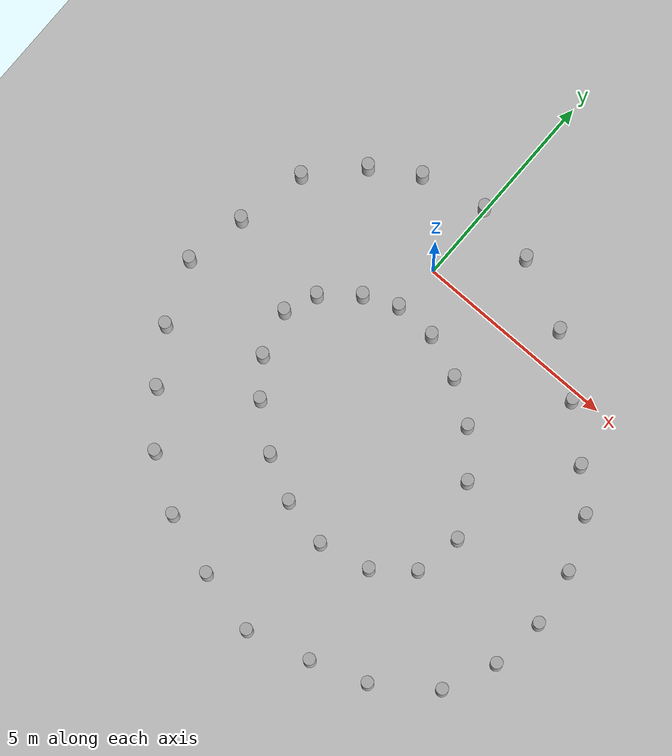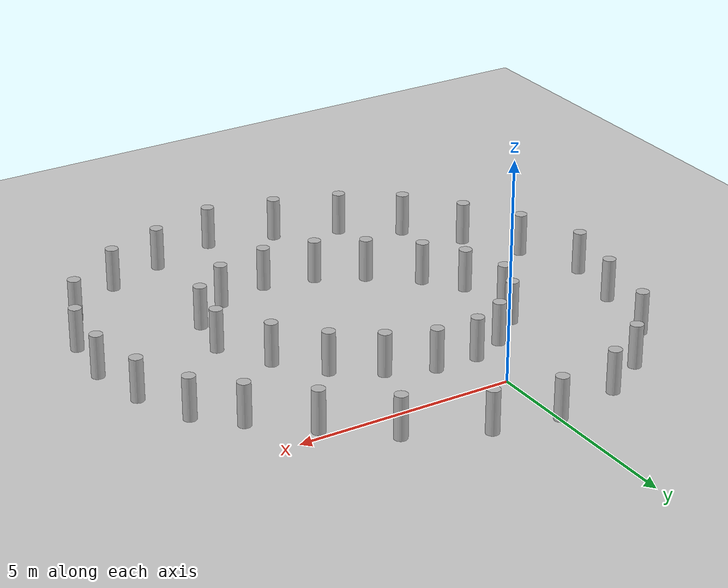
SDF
<sdf version="1.6">
 <world name="default">
  <light name="sun" type="directional">
   <pose>0 0 10 0 -0 0</pose>
   <diffuse>0.8 0.8 0.8 1</diffuse>
   <specular>0.1 0.1 0.1 1</specular>
   <attenuation>
    <range>1000</range>
    <constant>0.9</constant>
    <linear>0.01</linear>
    <quadratic>0.001</quadratic>
   </attenuation>
   <direction>-0.5 0.5 -1</direction>
  </light>
  <model name="ground_plane">
   <static>1</static>
   <link name="link">
    <collision name="collision">
     <geometry><plane><normal>0 0 1</normal><size>100 100</size></plane></geometry>
     <surface><friction><ode><mu>100</mu><mu2>50</mu2></ode></friction></surface>
    </collision>
    <visual name="visual">
     <cast_shadows>0</cast_shadows>
     <geometry><plane><normal>0 0 1</normal><size>100 100</size></plane></geometry>
     <material>
      <script><uri>file://media/materials/scripts/gazebo.material</uri><name>Gazebo/Grey</name></script>
     </material>
    </visual>
   </link>
  </model>
  <gravity>0 0 -9.8</gravity>
  <magnetic_field>6e-06 2.3e-05 -4.2e-05</magnetic_field>
  <atmosphere type="adiabatic"/>
  <physics name="default_physics" default="0" type="ode">
   <max_step_size>0.001</max_step_size>
   <real_time_factor>1</real_time_factor>
   <real_time_update_rate>1000</real_time_update_rate>
  </physics>
  <scene><ambient>0.4 0.4 0.4 1</ambient><background>0.7 0.7 0.7 1</background><shadows>1</shadows></scene>
  <spherical_coordinates>
   <surface_model>EARTH_WGS84</surface_model>
   <latitude_deg>0</latitude_deg>
   <longitude_deg>0</longitude_deg>
   <elevation>0</elevation>
   <heading_deg>0</heading_deg>
  </spherical_coordinates>
  <model name="cone_1">
   <link name="link">
    <inertial>
     <mass>0.1</mass>
     <inertia><ixx>1e-05</ixx><ixy>0</ixy><ixz>0</ixz><iyy>1e-05</iyy><iyz>0</iyz><izz>1e-05</izz></inertia>
    </inertial>
    <collision name="collision">
     <geometry><cylinder><radius>0.15</radius><length>1</length></cylinder></geometry>
     <surface>
      <friction><ode><mu>0.4</mu><mu2>0.4</mu2></ode></friction>
      <contact><ode><max_vel>0.1</max_vel><min_depth>0.0001</min_depth></ode></contact>
     </surface>
    </collision>
    <visual name="visual">
     <geometry><cylinder><radius>0.15</radius><length>1</length></cylinder></geometry>
    </visual>
   </link>
   <pose>-0.039241 -1.1855 0.499948 0.000226 0.000347 -0.028761</pose>
  </model>
  <model name="cone_1_clone">
   <link name="link">
    <inertial>
     <mass>0.1</mass>
     <inertia><ixx>1e-05</ixx><ixy>0</ixy><ixz>0</ixz><iyy>1e-05</iyy><iyz>0</iyz><izz>1e-05</izz></inertia>
    </inertial>
    <collision name="collision">
     <geometry><cylinder><radius>0.15</radius><length>1</length></cylinder></geometry>
     <surface>
      <friction><ode><mu>0.4</mu><mu2>0.4</mu2></ode></friction>
      <contact><ode><max_vel>0.1</max_vel><min_depth>0.0001</min_depth></ode></contact>
     </surface>
    </collision>
    <visual name="visual">
     <geometry><cylinder><radius>0.15</radius><length>1</length></cylinder></geometry>
    </visual>
   </link>
   <pose>0.969411 -1.19941 0.499942 0.000368 0.000253 -0.031693</pose>
  </model>
  <model name="cone_1_clone_0">
   <link name="link">
    <inertial>
     <mass>0.1</mass>
     <inertia><ixx>1e-05</ixx><ixy>0</ixy><ixz>0</ixz><iyy>1e-05</iyy><iyz>0</iyz><izz>1e-05</izz></inertia>
    </inertial>
    <collision name="collision">
     <geometry><cylinder><radius>0.15</radius><length>1</length></cylinder></geometry>
     <surface>
      <friction><ode><mu>0.4</mu><mu2>0.4</mu2></ode></friction>
      <contact><ode><max_vel>0.1</max_vel><min_depth>0.0001</min_depth></ode></contact>
     </surface>
    </collision>
    <visual name="visual">
     <geometry><cylinder><radius>0.15</radius><length>1</length></cylinder></geometry>
    </visual>
   </link>
   <pose>2.00718 -1.60476 0.499946 0.000328 0.000245 -0.022811</pose>
  </model>
  <model name="cone_1_clone_1">
   <link name="link">
    <inertial>
     <mass>0.1</mass>
     <inertia><ixx>1e-05</ixx><ixy>0</ixy><ixz>0</ixz><iyy>1e-05</iyy><iyz>0</iyz><izz>1e-05</izz></inertia>
    </inertial>
    <collision name="collision">
     <geometry><cylinder><radius>0.15</radius><length>1</length></cylinder></geometry>
     <surface>
      <friction><ode><mu>0.4</mu><mu2>0.4</mu2></ode></friction>
      <contact><ode><max_vel>0.1</max_vel><min_depth>0.0001</min_depth></ode></contact>
     </surface>
    </collision>
    <visual name="visual">
     <geometry><cylinder><radius>0.15</radius><length>1</length></cylinder></geometry>
    </visual>
   </link>
   <pose>2.97792 -2.26957 0.499942 0.000237 0.000378 -0.024478</pose>
  </model>
  <model name="cone_1_clone_2">
   <link name="link">
    <inertial>
     <mass>0.1</mass>
     <inertia><ixx>1e-05</ixx><ixy>0</ixy><ixz>0</ixz><iyy>1e-05</iyy><iyz>0</iyz><izz>1e-05</izz></inertia>
    </inertial>
    <collision name="collision">
     <geometry><cylinder><radius>0.15</radius><length>1</length></cylinder></geometry>
     <surface>
      <friction><ode><mu>0.4</mu><mu2>0.4</mu2></ode></friction>
      <contact><ode><max_vel>0.1</max_vel><min_depth>0.0001</min_depth></ode></contact>
     </surface>
    </collision>
    <visual name="visual">
     <geometry><cylinder><radius>0.15</radius><length>1</length></cylinder></geometry>
    </visual>
   </link>
   <pose>-0.03223 1.85501 0.499944 0.000338 0.000296 -0.021319</pose>
  </model>
  <model name="cone_1_clone_3">
   <link name="link">
    <inertial>
     <mass>0.1</mass>
     <inertia><ixx>1e-05</ixx><ixy>0</ixy><ixz>0</ixz><iyy>1e-05</iyy><iyz>0</iyz><izz>1e-05</izz></inertia>
    </inertial>
    <collision name="collision">
     <geometry><cylinder><radius>0.15</radius><length>1</length></cylinder></geometry>
     <surface>
      <friction><ode><mu>0.4</mu><mu2>0.4</mu2></ode></friction>
      <contact><ode><max_vel>0.1</max_vel><min_depth>0.0001</min_depth></ode></contact>
     </surface>
    </collision>
    <visual name="visual">
     <geometry><cylinder><radius>0.15</radius><length>1</length></cylinder></geometry>
    </visual>
   </link>
   <pose>1.46185 1.59059 0.499939 0.00027 0.000354 -0.016409</pose>
  </model>
  <model name="cone_1_clone_4">
   <link name="link">
    <inertial>
     <mass>0.1</mass>
     <inertia><ixx>1e-05</ixx><ixy>0</ixy><ixz>0</ixz><iyy>1e-05</iyy><iyz>0</iyz><izz>1e-05</izz></inertia>
    </inertial>
    <collision name="collision">
     <geometry><cylinder><radius>0.15</radius><length>1</length></cylinder></geometry>
     <surface>
      <friction><ode><mu>0.4</mu><mu2>0.4</mu2></ode></friction>
      <contact><ode><max_vel>0.1</max_vel><min_depth>0.0001</min_depth></ode></contact>
     </surface>
    </collision>
    <visual name="visual">
     <geometry><cylinder><radius>0.15</radius><length>1</length></cylinder></geometry>
    </visual>
   </link>
   <pose>3.14278 0.814292 0.499944 0.000339 0.000293 -0.016082</pose>
  </model>
  <model name="cone_1_clone_6">
   <link name="link">
    <inertial>
     <mass>0.1</mass>
     <inertia><ixx>1e-05</ixx><ixy>0</ixy><ixz>0</ixz><iyy>1e-05</iyy><iyz>0</iyz><izz>1e-05</izz></inertia>
    </inertial>
    <collision name="collision">
     <geometry><cylinder><radius>0.15</radius><length>1</length></cylinder></geometry>
     <surface>
      <friction><ode><mu>0.4</mu><mu2>0.4</mu2></ode></friction>
      <contact><ode><max_vel>0.1</max_vel><min_depth>0.0001</min_depth></ode></contact>
     </surface>
    </collision>
    <visual name="visual">
     <geometry><cylinder><radius>0.15</radius><length>1</length></cylinder></geometry>
    </visual>
   </link>
   <pose>5.54947 -1.25744 0.499948 0.000296 0.000306 -0.019628</pose>
  </model>
  <model name="cone_1_clone_7">
   <link name="link">
    <inertial>
     <mass>0.1</mass>
     <inertia><ixx>1e-05</ixx><ixy>0</ixy><ixz>0</ixz><iyy>1e-05</iyy><iyz>0</iyz><izz>1e-05</izz></inertia>
    </inertial>
    <collision name="collision">
     <geometry><cylinder><radius>0.15</radius><length>1</length></cylinder></geometry>
     <surface>
      <friction><ode><mu>0.4</mu><mu2>0.4</mu2></ode></friction>
      <contact><ode><max_vel>0.1</max_vel><min_depth>0.0001</min_depth></ode></contact>
     </surface>
    </collision>
    <visual name="visual">
     <geometry><cylinder><radius>0.15</radius><length>1</length></cylinder></geometry>
    </visual>
   </link>
   <pose>3.80679 -3.24381 0.499937 0.000257 0.000364 -0.019198</pose>
  </model>
  <model name="cone_1_clone_8">
   <link name="link">
    <inertial>
     <mass>0.1</mass>
     <inertia><ixx>1e-05</ixx><ixy>0</ixy><ixz>0</ixz><iyy>1e-05</iyy><iyz>0</iyz><izz>1e-05</izz></inertia>
    </inertial>
    <collision name="collision">
     <geometry><cylinder><radius>0.15</radius><length>1</length></cylinder></geometry>
     <surface>
      <friction><ode><mu>0.4</mu><mu2>0.4</mu2></ode></friction>
      <contact><ode><max_vel>0.1</max_vel><min_depth>0.0001</min_depth></ode></contact>
     </surface>
    </collision>
    <visual name="visual">
     <geometry><cylinder><radius>0.15</radius><length>1</length></cylinder></geometry>
    </visual>
   </link>
   <pose>6.92668 -3.31432 0.499946 0.000356 0.000178 -0.021743</pose>
  </model>
  <model name="cone_1_clone_9">
   <link name="link">
    <inertial>
     <mass>0.1</mass>
     <inertia><ixx>1e-05</ixx><ixy>0</ixy><ixz>0</ixz><iyy>1e-05</iyy><iyz>0</iyz><izz>1e-05</izz></inertia>
    </inertial>
    <collision name="collision">
     <geometry><cylinder><radius>0.15</radius><length>1</length></cylinder></geometry>
     <surface>
      <friction><ode><mu>0.4</mu><mu2>0.4</mu2></ode></friction>
      <contact><ode><max_vel>0.1</max_vel><min_depth>0.0001</min_depth></ode></contact>
     </surface>
    </collision>
    <visual name="visual">
     <geometry><cylinder><radius>0.15</radius><length>1</length></cylinder></geometry>
    </visual>
   </link>
   <pose>4.50004 -4.40453 0.499939 0.000285 0.000342 -0.022443</pose>
  </model>
  <model name="cone_1_clone_10">
   <link name="link">
    <inertial>
     <mass>0.1</mass>
     <inertia><ixx>1e-05</ixx><ixy>0</ixy><ixz>0</ixz><iyy>1e-05</iyy><iyz>0</iyz><izz>1e-05</izz></inertia>
    </inertial>
    <collision name="collision">
     <geometry><cylinder><radius>0.15</radius><length>1</length></cylinder></geometry>
     <surface>
      <friction><ode><mu>0.4</mu><mu2>0.4</mu2></ode></friction>
      <contact><ode><max_vel>0.1</max_vel><min_depth>0.0001</min_depth></ode></contact>
     </surface>
    </collision>
    <visual name="visual">
     <geometry><cylinder><radius>0.15</radius><length>1</length></cylinder></geometry>
    </visual>
   </link>
   <pose>7.18191 -4.66866 0.499947 0.000362 0.000257 -0.015597</pose>
  </model>
  <model name="cone_1_clone_11">
   <link name="link">
    <inertial>
     <mass>0.1</mass>
     <inertia><ixx>1e-05</ixx><ixy>0</ixy><ixz>0</ixz><iyy>1e-05</iyy><iyz>0</iyz><izz>1e-05</izz></inertia>
    </inertial>
    <collision name="collision">
     <geometry><cylinder><radius>0.15</radius><length>1</length></cylinder></geometry>
     <surface>
      <friction><ode><mu>0.4</mu><mu2>0.4</mu2></ode></friction>
      <contact><ode><max_vel>0.1</max_vel><min_depth>0.0001</min_depth></ode></contact>
     </surface>
    </collision>
    <visual name="visual">
     <geometry><cylinder><radius>0.15</radius><length>1</length></cylinder></geometry>
    </visual>
   </link>
   <pose>4.28345 -5.54835 0.499945 0.000331 0.000307 -0.020982</pose>
  </model>
  <model name="cone_1_clone_12">
   <link name="link">
    <inertial>
     <mass>0.1</mass>
     <inertia><ixx>1e-05</ixx><ixy>0</ixy><ixz>0</ixz><iyy>1e-05</iyy><iyz>0</iyz><izz>1e-05</izz></inertia>
    </inertial>
    <collision name="collision">
     <geometry><cylinder><radius>0.15</radius><length>1</length></cylinder></geometry>
     <surface>
      <friction><ode><mu>0.4</mu><mu2>0.4</mu2></ode></friction>
      <contact><ode><max_vel>0.1</max_vel><min_depth>0.0001</min_depth></ode></contact>
     </surface>
    </collision>
    <visual name="visual">
     <geometry><cylinder><radius>0.15</radius><length>1</length></cylinder></geometry>
    </visual>
   </link>
   <pose>6.47946 -7.26574 0.499947 0.000247 0.000369 -0.017052</pose>
  </model>
  <model name="cone_1_clone_13">
   <link name="link">
    <inertial>
     <mass>0.1</mass>
     <inertia><ixx>1e-05</ixx><ixy>0</ixy><ixz>0</ixz><iyy>1e-05</iyy><iyz>0</iyz><izz>1e-05</izz></inertia>
    </inertial>
    <collision name="collision">
     <geometry><cylinder><radius>0.15</radius><length>1</length></cylinder></geometry>
     <surface>
      <friction><ode><mu>0.4</mu><mu2>0.4</mu2></ode></friction>
      <contact><ode><max_vel>0.1</max_vel><min_depth>0.0001</min_depth></ode></contact>
     </surface>
    </collision>
    <visual name="visual">
     <geometry><cylinder><radius>0.15</radius><length>1</length></cylinder></geometry>
    </visual>
   </link>
   <pose>7.04196 -6.0005 0.499945 0.000202 0.000371 -0.021001</pose>
  </model>
  <model name="cone_1_clone_14">
   <link name="link">
    <inertial>
     <mass>0.1</mass>
     <inertia><ixx>1e-05</ixx><ixy>0</ixy><ixz>0</ixz><iyy>1e-05</iyy><iyz>0</iyz><izz>1e-05</izz></inertia>
    </inertial>
    <collision name="collision">
     <geometry><cylinder><radius>0.15</radius><length>1</length></cylinder></geometry>
     <surface>
      <friction><ode><mu>0.4</mu><mu2>0.4</mu2></ode></friction>
      <contact><ode><max_vel>0.1</max_vel><min_depth>0.0001</min_depth></ode></contact>
     </surface>
    </collision>
    <visual name="visual">
     <geometry><cylinder><radius>0.15</radius><length>1</length></cylinder></geometry>
    </visual>
   </link>
   <pose>3.39785 -6.25296 0.499941 0.000359 0.000267 -0.017434</pose>
  </model>
  <model name="cone_1_clone_15">
   <link name="link">
    <inertial>
     <mass>0.1</mass>
     <inertia><ixx>1e-05</ixx><ixy>0</ixy><ixz>0</ixz><iyy>1e-05</iyy><iyz>0</iyz><izz>1e-05</izz></inertia>
    </inertial>
    <collision name="collision">
     <geometry><cylinder><radius>0.15</radius><length>1</length></cylinder></geometry>
     <surface>
      <friction><ode><mu>0.4</mu><mu2>0.4</mu2></ode></friction>
      <contact><ode><max_vel>0.1</max_vel><min_depth>0.0001</min_depth></ode></contact>
     </surface>
    </collision>
    <visual name="visual">
     <geometry><cylinder><radius>0.15</radius><length>1</length></cylinder></geometry>
    </visual>
   </link>
   <pose>5.08536 -8.26764 0.499943 0.000222 0.000388 -0.025256</pose>
  </model>
  <model name="cone_1_clone_16">
   <link name="link">
    <inertial>
     <mass>0.1</mass>
     <inertia><ixx>1e-05</ixx><ixy>0</ixy><ixz>0</ixz><iyy>1e-05</iyy><iyz>0</iyz><izz>1e-05</izz></inertia>
    </inertial>
    <collision name="collision">
     <geometry><cylinder><radius>0.15</radius><length>1</length></cylinder></geometry>
     <surface>
      <friction><ode><mu>0.4</mu><mu2>0.4</mu2></ode></friction>
      <contact><ode><max_vel>0.1</max_vel><min_depth>0.0001</min_depth></ode></contact>
     </surface>
    </collision>
    <visual name="visual">
     <geometry><cylinder><radius>0.15</radius><length>1</length></cylinder></geometry>
    </visual>
   </link>
   <pose>2.16278 -6.53065 0.499946 0.000264 0.000358 -0.016715</pose>
  </model>
  <model name="cone_1_clone_17">
   <link name="link">
    <inertial>
     <mass>0.1</mass>
     <inertia><ixx>1e-05</ixx><ixy>0</ixy><ixz>0</ixz><iyy>1e-05</iyy><iyz>0</iyz><izz>1e-05</izz></inertia>
    </inertial>
    <collision name="collision">
     <geometry><cylinder><radius>0.15</radius><length>1</length></cylinder></geometry>
     <surface>
      <friction><ode><mu>0.4</mu><mu2>0.4</mu2></ode></friction>
      <contact><ode><max_vel>0.1</max_vel><min_depth>0.0001</min_depth></ode></contact>
     </surface>
    </collision>
    <visual name="visual">
     <geometry><cylinder><radius>0.15</radius><length>1</length></cylinder></geometry>
    </visual>
   </link>
   <pose>3.73303 -8.7319 0.499908 0.000323 0.000313 -0.026379</pose>
  </model>
  <model name="cone_1_clone_18">
   <link name="link">
    <inertial>
     <mass>0.1</mass>
     <inertia><ixx>1e-05</ixx><ixy>0</ixy><ixz>0</ixz><iyy>1e-05</iyy><iyz>0</iyz><izz>1e-05</izz></inertia>
    </inertial>
    <collision name="collision">
     <geometry><cylinder><radius>0.15</radius><length>1</length></cylinder></geometry>
     <surface>
      <friction><ode><mu>0.4</mu><mu2>0.4</mu2></ode></friction>
      <contact><ode><max_vel>0.1</max_vel><min_depth>0.0001</min_depth></ode></contact>
     </surface>
    </collision>
    <visual name="visual">
     <geometry><cylinder><radius>0.15</radius><length>1</length></cylinder></geometry>
    </visual>
   </link>
   <pose>0.981142 -6.26886 0.499947 0.000343 0.000171 -0.012419</pose>
  </model>
  <model name="cone_1_clone_20">
   <link name="link">
    <inertial>
     <mass>0.1</mass>
     <inertia><ixx>1e-05</ixx><ixy>0</ixy><ixz>0</ixz><iyy>1e-05</iyy><iyz>0</iyz><izz>1e-05</izz></inertia>
    </inertial>
    <collision name="collision">
     <geometry><cylinder><radius>0.15</radius><length>1</length></cylinder></geometry>
     <surface>
      <friction><ode><mu>0.4</mu><mu2>0.4</mu2></ode></friction>
      <contact><ode><max_vel>0.1</max_vel><min_depth>0.0001</min_depth></ode></contact>
     </surface>
    </collision>
    <visual name="visual">
     <geometry><cylinder><radius>0.15</radius><length>1</length></cylinder></geometry>
    </visual>
   </link>
   <pose>-0.0586 -5.72267 0.499943 0.00021 0.000378 -0.023314</pose>
  </model>
  <model name="cone_1_clone_21">
   <link name="link">
    <inertial>
     <mass>0.1</mass>
     <inertia><ixx>1e-05</ixx><ixy>0</ixy><ixz>0</ixz><iyy>1e-05</iyy><iyz>0</iyz><izz>1e-05</izz></inertia>
    </inertial>
    <collision name="collision">
     <geometry><cylinder><radius>0.15</radius><length>1</length></cylinder></geometry>
     <surface>
      <friction><ode><mu>0.4</mu><mu2>0.4</mu2></ode></friction>
      <contact><ode><max_vel>0.1</max_vel><min_depth>0.0001</min_depth></ode></contact>
     </surface>
    </collision>
    <visual name="visual">
     <geometry><cylinder><radius>0.15</radius><length>1</length></cylinder></geometry>
    </visual>
   </link>
   <pose>-0.846331 -8.24529 0.499941 0.000264 0.000358 -0.014708</pose>
  </model>
  <model name="cone_1_clone_22">
   <link name="link">
    <inertial>
     <mass>0.1</mass>
     <inertia><ixx>1e-05</ixx><ixy>0</ixy><ixz>0</ixz><iyy>1e-05</iyy><iyz>0</iyz><izz>1e-05</izz></inertia>
    </inertial>
    <collision name="collision">
     <geometry><cylinder><radius>0.15</radius><length>1</length></cylinder></geometry>
     <surface>
      <friction><ode><mu>0.4</mu><mu2>0.4</mu2></ode></friction>
      <contact><ode><max_vel>0.1</max_vel><min_depth>0.0001</min_depth></ode></contact>
     </surface>
    </collision>
    <visual name="visual">
     <geometry><cylinder><radius>0.15</radius><length>1</length></cylinder></geometry>
    </visual>
   </link>
   <pose>-3.06409 -6.24928 0.499938 0.000247 0.000371 -0.02105</pose>
  </model>
  <model name="cone_1_clone_23">
   <link name="link">
    <inertial>
     <mass>0.1</mass>
     <inertia><ixx>1e-05</ixx><ixy>0</ixy><ixz>0</ixz><iyy>1e-05</iyy><iyz>0</iyz><izz>1e-05</izz></inertia>
    </inertial>
    <collision name="collision">
     <geometry><cylinder><radius>0.15</radius><length>1</length></cylinder></geometry>
     <surface>
      <friction><ode><mu>0.4</mu><mu2>0.4</mu2></ode></friction>
      <contact><ode><max_vel>0.1</max_vel><min_depth>0.0001</min_depth></ode></contact>
     </surface>
    </collision>
    <visual name="visual">
     <geometry><cylinder><radius>0.15</radius><length>1</length></cylinder></geometry>
    </visual>
   </link>
   <pose>-1.06064 -4.911 0.499941 0.000369 0.00025 -0.015768</pose>
  </model>
  <model name="cone_1_clone_24">
   <link name="link">
    <inertial>
     <mass>0.1</mass>
     <inertia><ixx>1e-05</ixx><ixy>0</ixy><ixz>0</ixz><iyy>1e-05</iyy><iyz>0</iyz><izz>1e-05</izz></inertia>
    </inertial>
    <collision name="collision">
     <geometry><cylinder><radius>0.15</radius><length>1</length></cylinder></geometry>
     <surface>
      <friction><ode><mu>0.4</mu><mu2>0.4</mu2></ode></friction>
      <contact><ode><max_vel>0.1</max_vel><min_depth>0.0001</min_depth></ode></contact>
     </surface>
    </collision>
    <visual name="visual">
     <geometry><cylinder><radius>0.15</radius><length>1</length></cylinder></geometry>
    </visual>
   </link>
   <pose>-4.43395 -3.50649 0.499941 0.000254 0.000368 -0.012602</pose>
  </model>
  <model name="cone_1_clone_25">
   <link name="link">
    <inertial>
     <mass>0.1</mass>
     <inertia><ixx>1e-05</ixx><ixy>0</ixy><ixz>0</ixz><iyy>1e-05</iyy><iyz>0</iyz><izz>1e-05</izz></inertia>
    </inertial>
    <collision name="collision">
     <geometry><cylinder><radius>0.15</radius><length>1</length></cylinder></geometry>
     <surface>
      <friction><ode><mu>0.4</mu><mu2>0.4</mu2></ode></friction>
      <contact><ode><max_vel>0.1</max_vel><min_depth>0.0001</min_depth></ode></contact>
     </surface>
    </collision>
    <visual name="visual">
     <geometry><cylinder><radius>0.15</radius><length>1</length></cylinder></geometry>
    </visual>
   </link>
   <pose>-2.11084 -7.40838 0.499942 0.000269 0.000356 -0.011519</pose>
  </model>
  <model name="cone_1_clone_26">
   <link name="link">
    <inertial>
     <mass>0.1</mass>
     <inertia><ixx>1e-05</ixx><ixy>0</ixy><ixz>0</ixz><iyy>1e-05</iyy><iyz>0</iyz><izz>1e-05</izz></inertia>
    </inertial>
    <collision name="collision">
     <geometry><cylinder><radius>0.15</radius><length>1</length></cylinder></geometry>
     <surface>
      <friction><ode><mu>0.4</mu><mu2>0.4</mu2></ode></friction>
      <contact><ode><max_vel>0.1</max_vel><min_depth>0.0001</min_depth></ode></contact>
     </surface>
    </collision>
    <visual name="visual">
     <geometry><cylinder><radius>0.15</radius><length>1</length></cylinder></geometry>
    </visual>
   </link>
   <pose>-1.68532 -4.09422 0.499943 0.000229 0.000303 -0.011226</pose>
  </model>
  <model name="cone_1_clone_27">
   <link name="link">
    <inertial>
     <mass>0.1</mass>
     <inertia><ixx>1e-05</ixx><ixy>0</ixy><ixz>0</ixz><iyy>1e-05</iyy><iyz>0</iyz><izz>1e-05</izz></inertia>
    </inertial>
    <collision name="collision">
     <geometry><cylinder><radius>0.15</radius><length>1</length></cylinder></geometry>
     <surface>
      <friction><ode><mu>0.4</mu><mu2>0.4</mu2></ode></friction>
      <contact><ode><max_vel>0.1</max_vel><min_depth>0.0001</min_depth></ode></contact>
     </surface>
    </collision>
    <visual name="visual">
     <geometry><cylinder><radius>0.15</radius><length>1</length></cylinder></geometry>
    </visual>
   </link>
   <pose>-1.65305 -2.21811 0.499946 0.000344 0.000276 -0.014618</pose>
  </model>
  <model name="cone_1_clone_28">
   <link name="link">
    <inertial>
     <mass>0.1</mass>
     <inertia><ixx>1e-05</ixx><ixy>0</ixy><ixz>0</ixz><iyy>1e-05</iyy><iyz>0</iyz><izz>1e-05</izz></inertia>
    </inertial>
    <collision name="collision">
     <geometry><cylinder><radius>0.15</radius><length>1</length></cylinder></geometry>
     <surface>
      <friction><ode><mu>0.4</mu><mu2>0.4</mu2></ode></friction>
      <contact><ode><max_vel>0.1</max_vel><min_depth>0.0001</min_depth></ode></contact>
     </surface>
    </collision>
    <visual name="visual">
     <geometry><cylinder><radius>0.15</radius><length>1</length></cylinder></geometry>
    </visual>
   </link>
   <pose>-0.84417 -1.53072 0.499909 0.000339 0.000304 -0.013755</pose>
  </model>
  <model name="cone_1_clone_29">
   <link name="link">
    <inertial>
     <mass>0.1</mass>
     <inertia><ixx>1e-05</ixx><ixy>0</ixy><ixz>0</ixz><iyy>1e-05</iyy><iyz>0</iyz><izz>1e-05</izz></inertia>
    </inertial>
    <collision name="collision">
     <geometry><cylinder><radius>0.15</radius><length>1</length></cylinder></geometry>
     <surface>
      <friction><ode><mu>0.4</mu><mu2>0.4</mu2></ode></friction>
      <contact><ode><max_vel>0.1</max_vel><min_depth>0.0001</min_depth></ode></contact>
     </surface>
    </collision>
    <visual name="visual">
     <geometry><cylinder><radius>0.15</radius><length>1</length></cylinder></geometry>
    </visual>
   </link>
   <pose>-4.13988 -2.01361 0.499947 0.000243 0.00036 -0.012844</pose>
  </model>
  <model name="cone_1_clone_30">
   <link name="link">
    <inertial>
     <mass>0.1</mass>
     <inertia><ixx>1e-05</ixx><ixy>0</ixy><ixz>0</ixz><iyy>1e-05</iyy><iyz>0</iyz><izz>1e-05</izz></inertia>
    </inertial>
    <collision name="collision">
     <geometry><cylinder><radius>0.15</radius><length>1</length></cylinder></geometry>
     <surface>
      <friction><ode><mu>0.4</mu><mu2>0.4</mu2></ode></friction>
      <contact><ode><max_vel>0.1</max_vel><min_depth>0.0001</min_depth></ode></contact>
     </surface>
    </collision>
    <visual name="visual">
     <geometry><cylinder><radius>0.15</radius><length>1</length></cylinder></geometry>
    </visual>
   </link>
   <pose>-3.75987 -0.328034 0.499932 0.000258 0.000362 -0.020259</pose>
  </model>
  <model name="cone_1_clone_31">
   <link name="link">
    <inertial>
     <mass>0.1</mass>
     <inertia><ixx>1e-05</ixx><ixy>0</ixy><ixz>0</ixz><iyy>1e-05</iyy><iyz>0</iyz><izz>1e-05</izz></inertia>
    </inertial>
    <collision name="collision">
     <geometry><cylinder><radius>0.15</radius><length>1</length></cylinder></geometry>
     <surface>
      <friction><ode><mu>0.4</mu><mu2>0.4</mu2></ode></friction>
      <contact><ode><max_vel>0.1</max_vel><min_depth>0.0001</min_depth></ode></contact>
     </surface>
    </collision>
    <visual name="visual">
     <geometry><cylinder><radius>0.15</radius><length>1</length></cylinder></geometry>
    </visual>
   </link>
   <pose>-2.70528 0.82873 0.499945 0.000318 0.000314 -0.006819</pose>
  </model>
  <model name="cone_1_clone_32">
   <link name="link">
    <inertial>
     <mass>0.1</mass>
     <inertia><ixx>1e-05</ixx><ixy>0</ixy><ixz>0</ixz><iyy>1e-05</iyy><iyz>0</iyz><izz>1e-05</izz></inertia>
    </inertial>
    <collision name="collision">
     <geometry><cylinder><radius>0.15</radius><length>1</length></cylinder></geometry>
     <surface>
      <friction><ode><mu>0.4</mu><mu2>0.4</mu2></ode></friction>
      <contact><ode><max_vel>0.1</max_vel><min_depth>0.0001</min_depth></ode></contact>
     </surface>
    </collision>
    <visual name="visual">
     <geometry><cylinder><radius>0.15</radius><length>1</length></cylinder></geometry>
    </visual>
   </link>
   <pose>-1.62528 1.50014 0.499946 0.000348 0.000284 -0.016531</pose>
  </model>
  <model name="cone_1_clone_34">
   <link name="link">
    <inertial>
     <mass>0.1</mass>
     <inertia><ixx>1e-05</ixx><ixy>0</ixy><ixz>0</ixz><iyy>1e-05</iyy><iyz>0</iyz><izz>1e-05</izz></inertia>
    </inertial>
    <collision name="collision">
     <geometry><cylinder><radius>0.15</radius><length>1</length></cylinder></geometry>
     <surface>
      <friction><ode><mu>0.4</mu><mu2>0.4</mu2></ode></friction>
      <contact><ode><max_vel>0.1</max_vel><min_depth>0.0001</min_depth></ode></contact>
     </surface>
    </collision>
    <visual name="visual">
     <geometry><cylinder><radius>0.15</radius><length>1</length></cylinder></geometry>
    </visual>
   </link>
   <pose>-3.85185 -5.02219 0.499942 0.000331 0.0003 -0.008335</pose>
  </model>
  <model name="cone_1_clone_35">
   <link name="link">
    <inertial>
     <mass>0.1</mass>
     <inertia><ixx>1e-05</ixx><ixy>0</ixy><ixz>0</ixz><iyy>1e-05</iyy><iyz>0</iyz><izz>1e-05</izz></inertia>
    </inertial>
    <collision name="collision">
     <geometry><cylinder><radius>0.15</radius><length>1</length></cylinder></geometry>
     <surface>
      <friction><ode><mu>0.4</mu><mu2>0.4</mu2></ode></friction>
      <contact><ode><max_vel>0.1</max_vel><min_depth>0.0001</min_depth></ode></contact>
     </surface>
    </collision>
    <visual name="visual">
     <geometry><cylinder><radius>0.15</radius><length>1</length></cylinder></geometry>
    </visual>
   </link>
   <pose>2.18761 -9.15157 0.499942 0.000296 0.000334 -0.022625</pose>
  </model>
  <model name="cone_1_clone_36">
   <link name="link">
    <inertial>
     <mass>0.1</mass>
     <inertia><ixx>1e-05</ixx><ixy>0</ixy><ixz>0</ixz><iyy>1e-05</iyy><iyz>0</iyz><izz>1e-05</izz></inertia>
    </inertial>
    <collision name="collision">
     <geometry><cylinder><radius>0.15</radius><length>1</length></cylinder></geometry>
     <surface>
      <friction><ode><mu>0.4</mu><mu2>0.4</mu2></ode></friction>
      <contact><ode><max_vel>0.1</max_vel><min_depth>0.0001</min_depth></ode></contact>
     </surface>
    </collision>
    <visual name="visual">
     <geometry><cylinder><radius>0.15</radius><length>1</length></cylinder></geometry>
    </visual>
   </link>
   <pose>0.635357 -8.76682 0.499942 0.00027 0.000357 -0.027058</pose>
  </model>
  <model name="cone_1_clone_19">
   <link name="link">
    <inertial>
     <mass>0.1</mass>
     <inertia><ixx>1e-05</ixx><ixy>0</ixy><ixz>0</ixz><iyy>1e-05</iyy><iyz>0</iyz><izz>1e-05</izz></inertia>
    </inertial>
    <collision name="collision">
     <geometry><cylinder><radius>0.15</radius><length>1</length></cylinder></geometry>
     <surface>
      <friction><ode><mu>0.4</mu><mu2>0.4</mu2></ode></friction>
      <contact><ode><max_vel>0.1</max_vel><min_depth>0.0001</min_depth></ode></contact>
     </surface>
    </collision>
    <visual name="visual">
     <geometry><cylinder><radius>0.15</radius><length>1</length></cylinder></geometry>
    </visual>
   </link>
   <pose>4.41956 -0.242055 0.499937 0.000346 0.000281 -0.025525</pose>
  </model>
  <model name="cone_1_clone_5">
   <link name="link">
    <inertial>
     <mass>0.1</mass>
     <inertia><ixx>1e-05</ixx><ixy>0</ixy><ixz>0</ixz><iyy>1e-05</iyy><iyz>0</iyz><izz>1e-05</izz></inertia>
    </inertial>
    <collision name="collision">
     <geometry><cylinder><radius>0.15</radius><length>1</length></cylinder></geometry>
     <surface>
      <friction><ode><mu>0.4</mu><mu2>0.4</mu2></ode></friction>
      <contact><ode><max_vel>0.1</max_vel><min_depth>0.0001</min_depth></ode></contact>
     </surface>
    </collision>
    <visual name="visual">
     <geometry><cylinder><radius>0.15</radius><length>1</length></cylinder></geometry>
    </visual>
   </link>
   <pose>6.37101 -2.06096 0.499947 0.000284 0.000341 -0.02639</pose>
  </model>
  <model name="cone_1_clone_33">
   <link name="link">
    <inertial>
     <mass>0.1</mass>
     <inertia><ixx>1e-05</ixx><ixy>0</ixy><ixz>0</ixz><iyy>1e-05</iyy><iyz>0</iyz><izz>1e-05</izz></inertia>
    </inertial>
    <collision name="collision">
     <geometry><cylinder><radius>0.15</radius><length>1</length></cylinder></geometry>
     <surface>
      <friction><ode><mu>0.4</mu><mu2>0.4</mu2></ode></friction>
      <contact><ode><max_vel>0.1</max_vel><min_depth>0.0001</min_depth></ode></contact>
     </surface>
    </collision>
    <visual name="visual">
     <geometry><cylinder><radius>0.15</radius><length>1</length></cylinder></geometry>
    </visual>
   </link>
   <pose>-1.98214 -2.98871 0.499938 0.000335 0.000295 -0.028618</pose>
  </model>
 </world>
</sdf>
